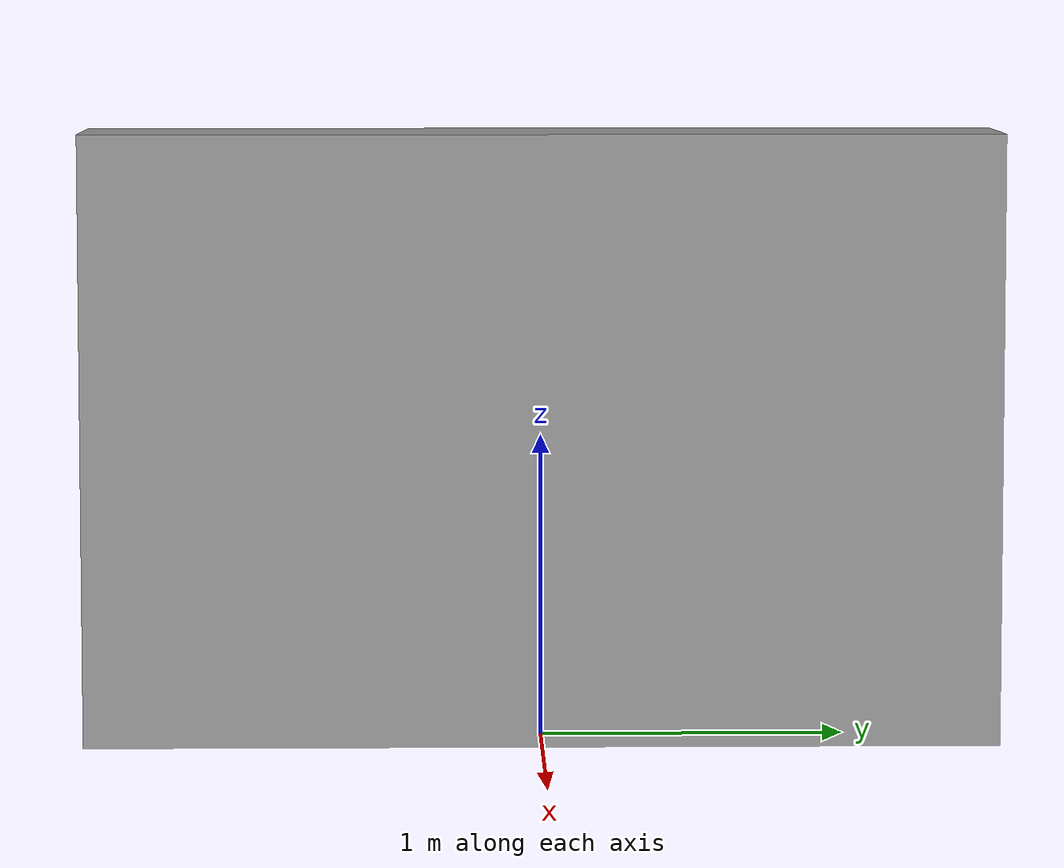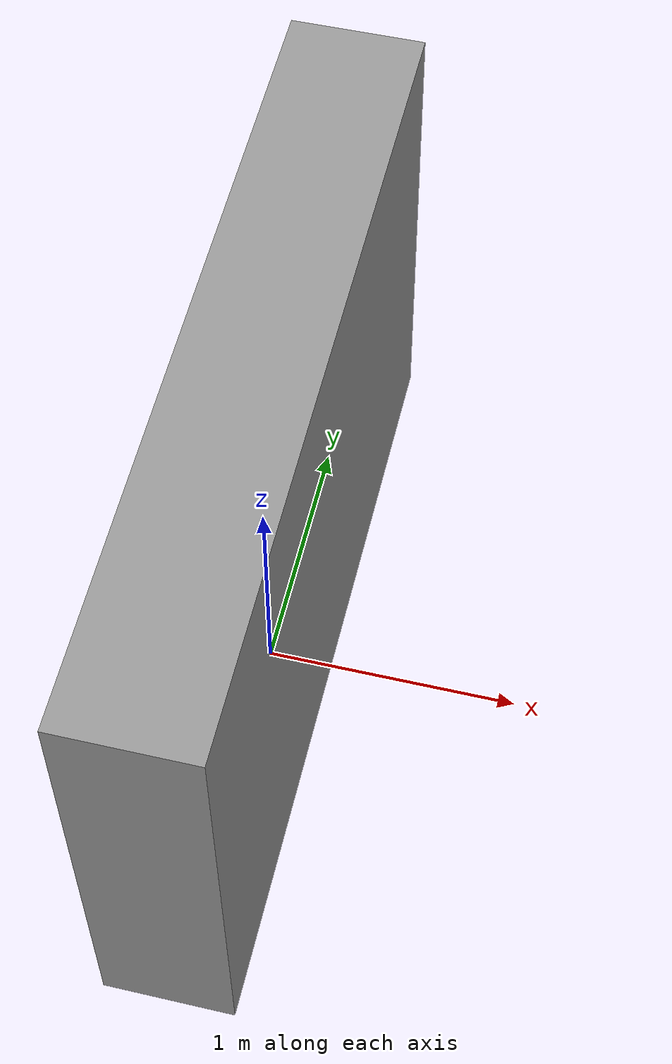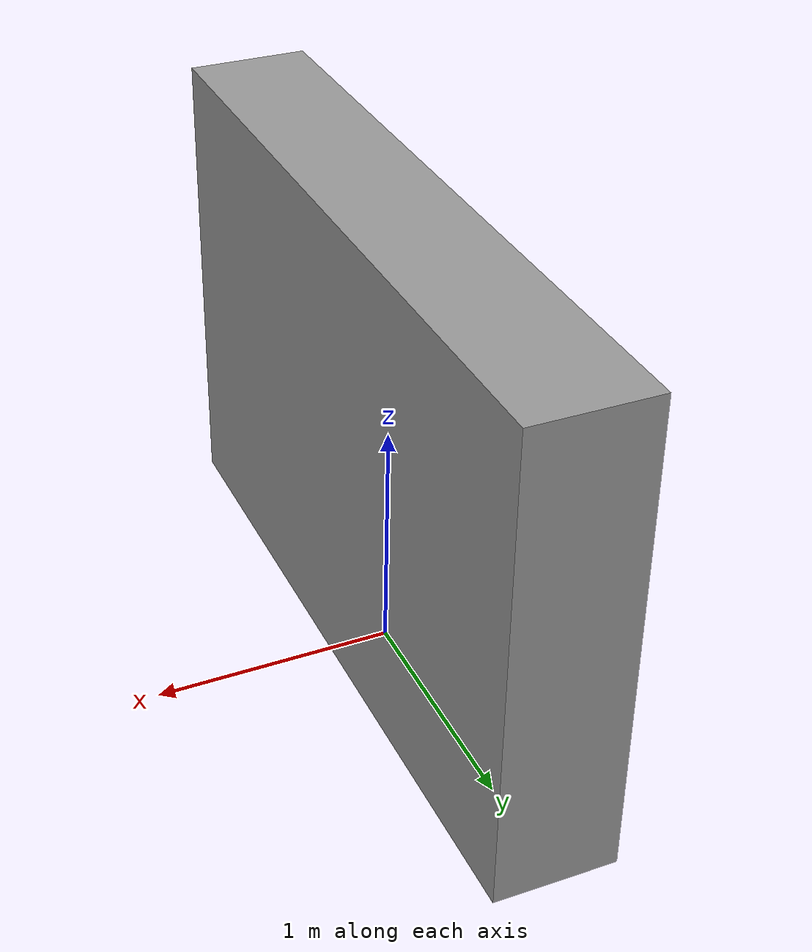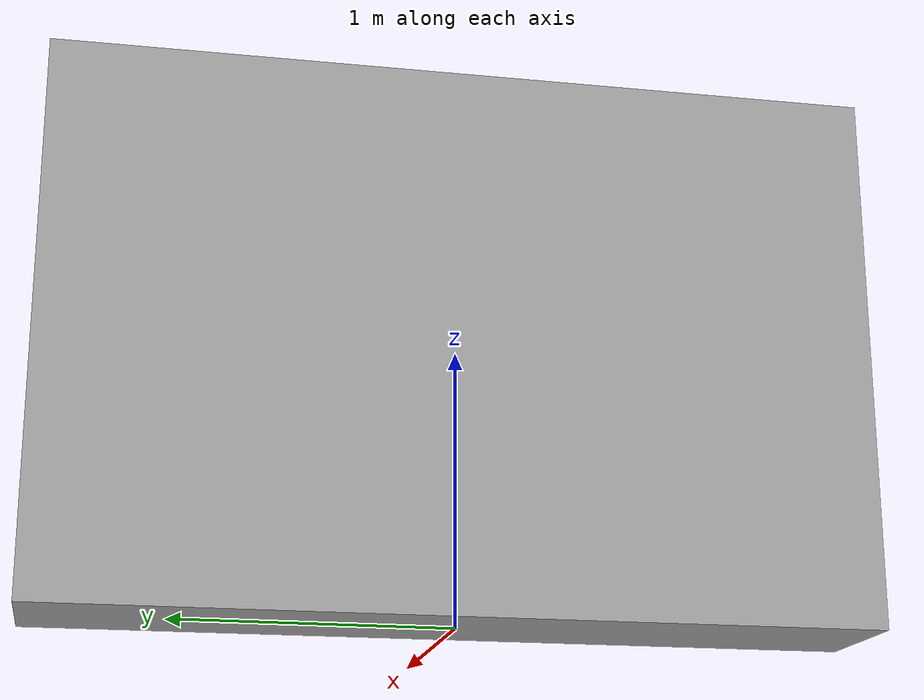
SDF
<?xml version='1.0'?>
<sdf version="1.4">
<model name="wall">
  <pose>0 0 1 0 0 0</pose>
  <static>true</static>
    <link name="link">
      <inertial>
        <mass>100.0</mass>
        <inertia>
          <ixx>0.83</ixx>
          <ixy>0.</ixy>
          <ixz>0.</ixz>
          <iyy>0.83</iyy>
          <iyz>0.</iyz>
          <izz>0.83</izz>
        </inertia>
      </inertial>
      <collision name="collision">
        <geometry>
          <box>
            <size>0.5 3.0 2.0</size>
          </box>
        </geometry>
      </collision>
      <visual name="visual">
        <geometry>
          <box>
            <size>0.5 3.0 2.0</size>
          </box>
        </geometry>
        <material>
          <script>
            <uri>file://media/materials/scripts/gazebo.material</uri>
            <name>Gazebo/Grey</name>
          </script>
        </material>
      </visual>
    </link>
  </model>
</sdf>
